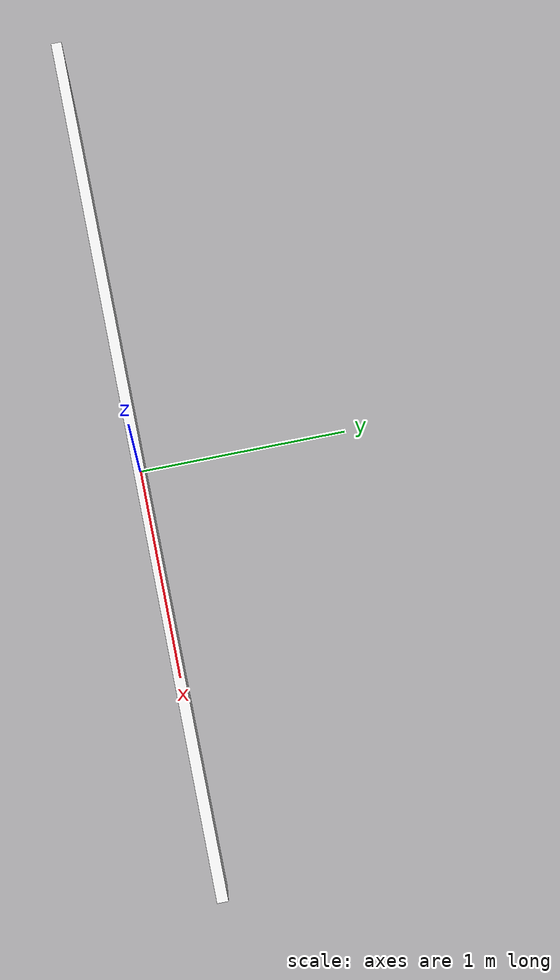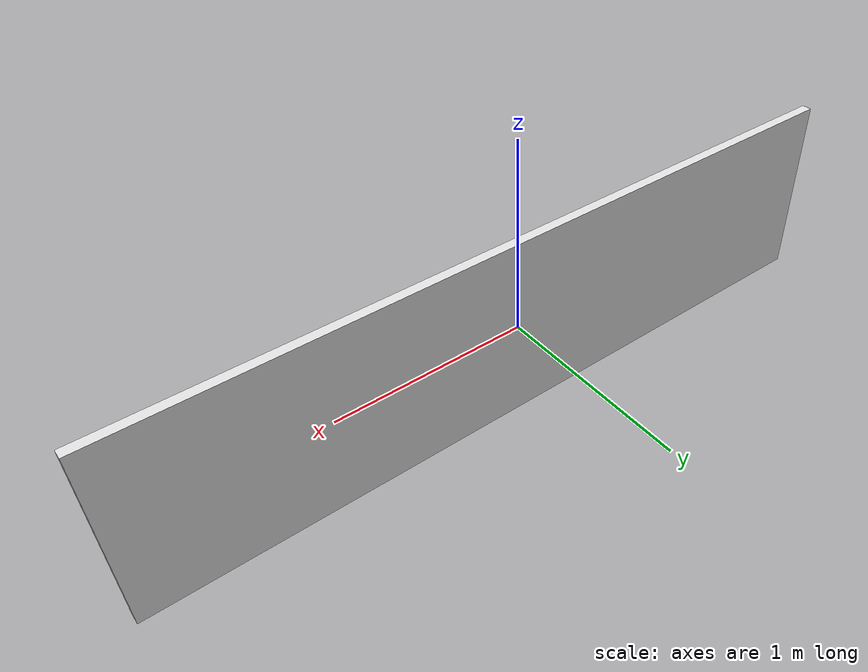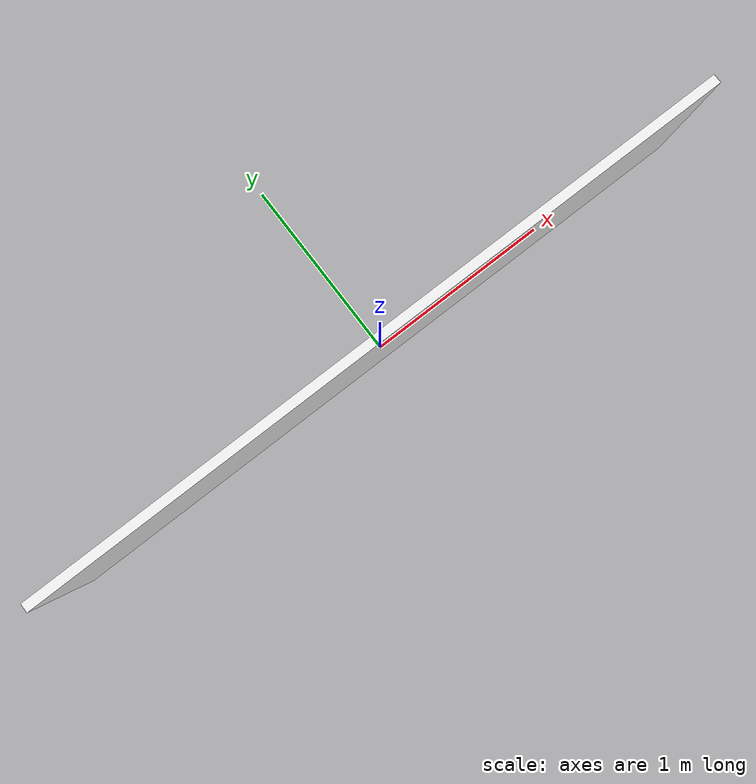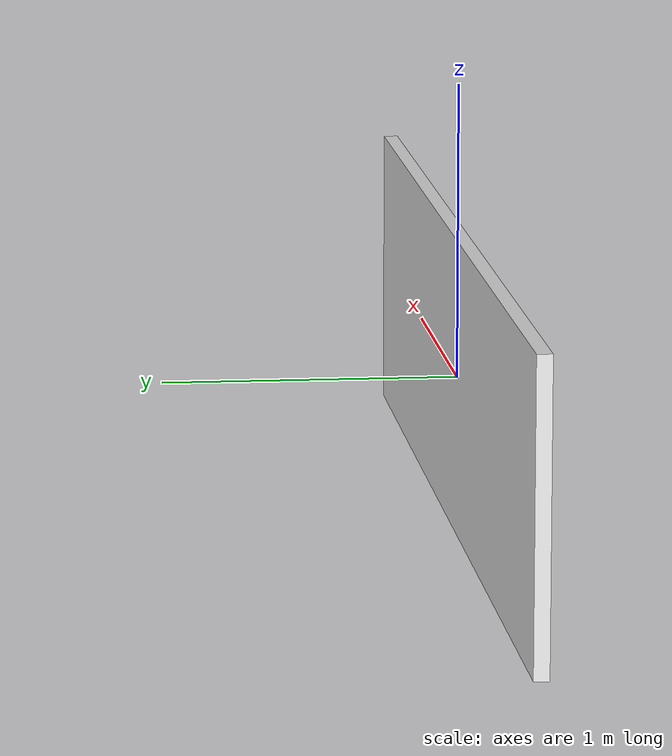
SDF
<?xml version="1.0"?>
<sdf version="1.6">
  <model name="wall_3m">
    <static>true</static>
    <link name="link">
      <collision name="collision">
        <geometry>
          <box>
            <size>4 0.05 1</size>
          </box>
        </geometry>
      </collision>
      <visual name="visual">
        <geometry>
          <box>
            <size>4 0.05 1</size>
          </box>
        </geometry>
        <material>
          <ambient>0.9 0.9 0.9 1</ambient>
          <diffuse>0.9 0.9 0.9 1</diffuse>
          <specular>0.3 0.3 0.3 1</specular>
        </material>
      </visual>
    </link>
  </model>
</sdf>
